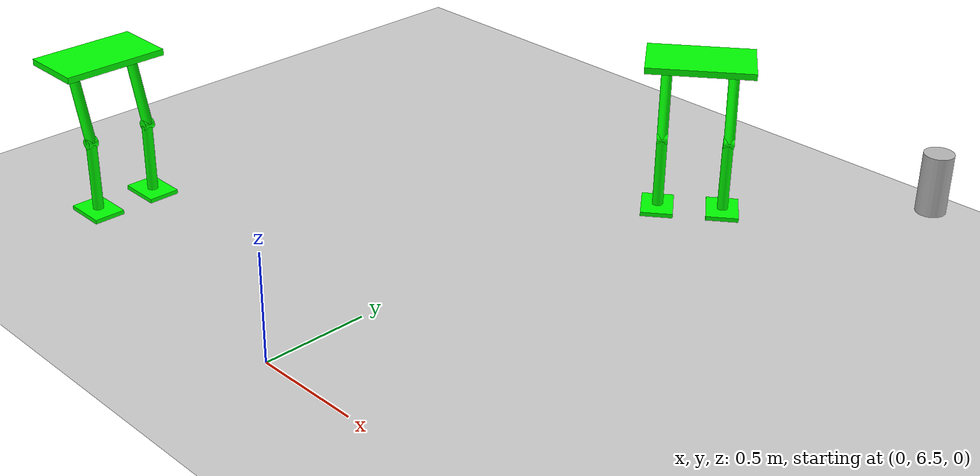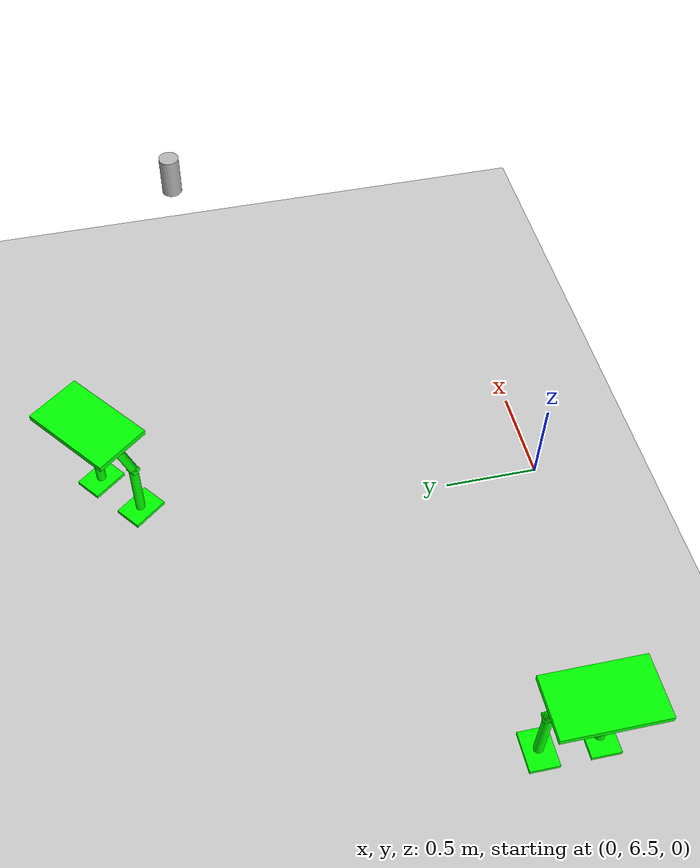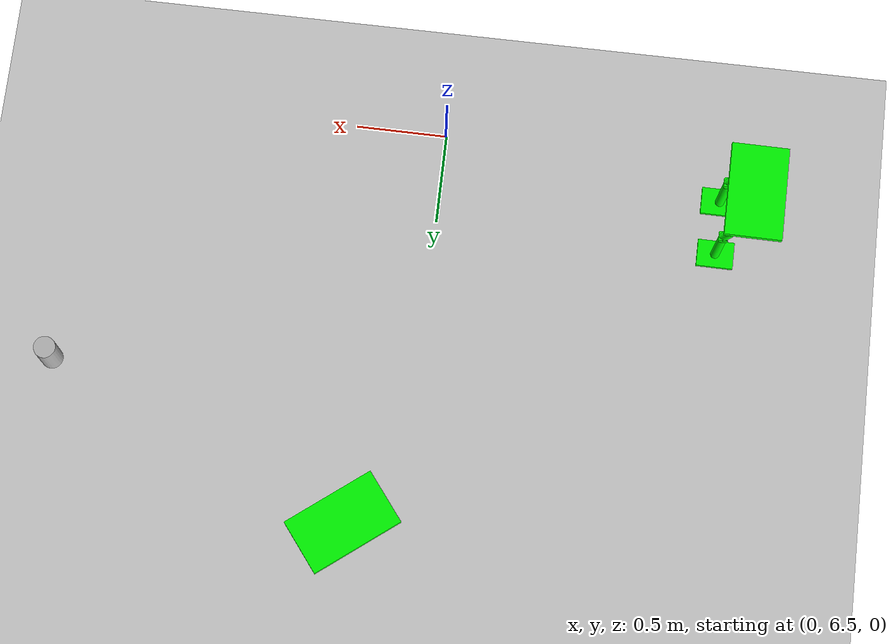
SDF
<sdf version="1.7">
 <world name="default">
  <model name="ground_plane">
   <static>1</static>
   <link name="link">
    <collision name="collision">
     <geometry><plane><normal>0 0 1</normal><size>100 100</size></plane></geometry>
     <surface>
      <contact><collide_bitmask>65535</collide_bitmask></contact>
      <friction><ode><mu>100</mu><mu2>50</mu2></ode></friction>
     </surface>
    </collision>
    <visual name="visual">
     <cast_shadows>0</cast_shadows>
     <geometry><plane><normal>0 0 1</normal><size>100 100</size></plane></geometry>
     <material>
      <script><uri>file://media/materials/scripts/gazebo.material</uri><name>Gazebo/Grey</name></script>
     </material>
    </visual>
   </link>
  </model>
  <model name="beer">
   <link name="link">
    <pose>0 0 0.115 0 -0 0</pose>
    <inertial>
     <mass>0.39</mass>
     <inertia><ixx>0.00058</ixx><ixy>0</ixy><ixz>0</ixz><iyy>0.00058</iyy><iyz>0</iyz><izz>0.00019</izz></inertia>
    </inertial>
    <collision name="collision">
     <geometry><cylinder><radius>0.055</radius><length>0.23</length></cylinder></geometry>
    </collision>
    <visual name="visual">
     <geometry><cylinder><radius>0.055</radius><length>0.23</length></cylinder></geometry>
     <material>
      <script>
       <uri>model://beer/materials/scripts</uri>
       <uri>model://beer/materials/textures</uri>
       <name>Beer/Diffuse</name>
      </script>
     </material>
    </visual>
   </link>
   <pose>1.81621 8.16915 0.774992 2.7e-05 1.2e-05 0.001071</pose>
  </model>
  <model name="HumanoidRobot">
   <link name="link">
    <pose>0.00063 -0.001818 -0.49 0 -0 0</pose>
    <inertial>
     <mass>1</mass>
     <inertia>
      <ixx>0.166667</ixx>
      <ixy>0</ixy>
      <ixz>0</ixz>
      <iyy>0.166667</iyy>
      <iyz>0</iyz>
      <izz>0.166667</izz>
     </inertia>
    </inertial>
    <visual name="visual">
     <geometry><box><size>0.2 0.15 0.02</size></box></geometry>
     <material>
      <script><name>Gazebo/Grey</name><uri>file://media/materials/scripts/gazebo.material</uri></script>
      <shader type="pixel"><normal_map>__default__</normal_map></shader>
      <ambient>0 1 0 0</ambient>
      <diffuse>0.7 0.7 0.7 1</diffuse>
      <specular>0.01 0.01 0.01 1</specular>
      <emissive>0 0 0 1</emissive>
     </material>
    </visual>
    <collision name="collision">
     <geometry><box><size>0.2 0.15 0.02</size></box></geometry>
     <surface>
      <friction>
       <ode><mu>1</mu><mu2>1</mu2><fdir1>0 0 0</fdir1><slip1>0</slip1><slip2>0</slip2></ode>
       <torsional>
        <coefficient>1</coefficient>
        <patch_radius>0</patch_radius>
        <surface_radius>0</surface_radius>
        <use_patch_radius>1</use_patch_radius>
        <ode><slip>0</slip></ode>
       </torsional>
      </friction>
      <bounce><restitution_coefficient>0</restitution_coefficient><threshold>1e+06</threshold></bounce>
      <contact>
       <collide_without_contact>0</collide_without_contact>
       <collide_without_contact_bitmask>1</collide_without_contact_bitmask>
       <collide_bitmask>1</collide_bitmask>
       <ode>
        <soft_cfm>0</soft_cfm>
        <soft_erp>0.2</soft_erp>
        <kp>1e+13</kp>
        <kd>1</kd>
        <max_vel>0.01</max_vel>
        <min_depth>0</min_depth>
       </ode>
       <bullet>
        <split_impulse>1</split_impulse>
        <split_impulse_penetration_threshold>-0.01</split_impulse_penetration_threshold>
        <soft_cfm>0</soft_cfm>
        <soft_erp>0.2</soft_erp>
        <kp>1e+13</kp>
        <kd>1</kd>
       </bullet>
      </contact>
     </surface>
    </collision>
   </link>
   <link name="link_0">
    <pose>0 0 -0.325 0 -0 0</pose>
    <inertial>
     <mass>1</mass>
     <inertia><ixx>0.145833</ixx><ixy>0</ixy><ixz>0</ixz><iyy>0.145833</iyy><iyz>0</iyz><izz>0.125</izz></inertia>
    </inertial>
    <visual name="visual">
     <geometry><cylinder><radius>0.025</radius><length>0.35</length></cylinder></geometry>
     <material>
      <lighting>1</lighting>
      <script><uri>file://media/materials/scripts/gazebo.material</uri><name>Gazebo/Grey</name></script>
      <shader type="pixel"><normal_map>__default__</normal_map></shader>
      <ambient>0 1 0 0</ambient>
      <diffuse>0.7 0.7 0.7 1</diffuse>
      <specular>0.01 0.01 0.01 1</specular>
      <emissive>0 0 0 1</emissive>
     </material>
    </visual>
    <collision name="collision">
     <geometry><cylinder><radius>0.025</radius><length>0.35</length></cylinder></geometry>
     <surface>
      <friction>
       <ode><mu>1</mu><mu2>1</mu2><fdir1>0 0 0</fdir1><slip1>0</slip1><slip2>0</slip2></ode>
       <torsional>
        <coefficient>1</coefficient>
        <patch_radius>0</patch_radius>
        <surface_radius>0</surface_radius>
        <use_patch_radius>1</use_patch_radius>
        <ode><slip>0</slip></ode>
       </torsional>
      </friction>
      <bounce><restitution_coefficient>0</restitution_coefficient><threshold>1e+06</threshold></bounce>
      <contact>
       <collide_without_contact>0</collide_without_contact>
       <collide_without_contact_bitmask>1</collide_without_contact_bitmask>
       <collide_bitmask>1</collide_bitmask>
       <ode>
        <soft_cfm>0</soft_cfm>
        <soft_erp>0.2</soft_erp>
        <kp>1e+13</kp>
        <kd>1</kd>
        <max_vel>0.01</max_vel>
        <min_depth>0</min_depth>
       </ode>
       <bullet>
        <split_impulse>1</split_impulse>
        <split_impulse_penetration_threshold>-0.01</split_impulse_penetration_threshold>
        <soft_cfm>0</soft_cfm>
        <soft_erp>0.2</soft_erp>
        <kp>1e+13</kp>
        <kd>1</kd>
       </bullet>
      </contact>
     </surface>
    </collision>
   </link>
   <link name="link_0_clone">
    <pose>-0.051999 -0.00033 0.020433 0 -0.308136 0</pose>
    <inertial>
     <mass>1</mass>
     <inertia><ixx>0.145833</ixx><ixy>0</ixy><ixz>0</ixz><iyy>0.145833</iyy><iyz>0</iyz><izz>0.125</izz></inertia>
    </inertial>
    <visual name="visual">
     <geometry><cylinder><radius>0.025</radius><length>0.35</length></cylinder></geometry>
     <material>
      <lighting>1</lighting>
      <script><uri>file://media/materials/scripts/gazebo.material</uri><name>Gazebo/Grey</name></script>
      <shader type="pixel"><normal_map>__default__</normal_map></shader>
      <ambient>0 1 0 0</ambient>
      <diffuse>0.7 0.7 0.7 1</diffuse>
      <specular>0.01 0.01 0.01 1</specular>
      <emissive>0 0 0 1</emissive>
     </material>
    </visual>
    <collision name="collision">
     <geometry><cylinder><radius>0.025</radius><length>0.35</length></cylinder></geometry>
     <surface>
      <friction>
       <ode><mu>1</mu><mu2>1</mu2><fdir1>0 0 0</fdir1><slip1>0</slip1><slip2>0</slip2></ode>
       <torsional>
        <coefficient>1</coefficient>
        <patch_radius>0</patch_radius>
        <surface_radius>0</surface_radius>
        <use_patch_radius>1</use_patch_radius>
        <ode><slip>0</slip></ode>
       </torsional>
      </friction>
      <bounce><restitution_coefficient>0</restitution_coefficient><threshold>1e+06</threshold></bounce>
      <contact>
       <collide_without_contact>0</collide_without_contact>
       <collide_without_contact_bitmask>1</collide_without_contact_bitmask>
       <collide_bitmask>1</collide_bitmask>
       <ode>
        <soft_cfm>0</soft_cfm>
        <soft_erp>0.2</soft_erp>
        <kp>1e+13</kp>
        <kd>1</kd>
        <max_vel>0.01</max_vel>
        <min_depth>0</min_depth>
       </ode>
       <bullet>
        <split_impulse>1</split_impulse>
        <split_impulse_penetration_threshold>-0.01</split_impulse_penetration_threshold>
        <soft_cfm>0</soft_cfm>
        <soft_erp>0.2</soft_erp>
        <kp>1e+13</kp>
        <kd>1</kd>
       </bullet>
      </contact>
     </surface>
    </collision>
   </link>
   <link name="link_0_clone_0">
    <pose>-0 0.3 -0.325 0 -0 0</pose>
    <inertial>
     <mass>1</mass>
     <inertia><ixx>0.145833</ixx><ixy>0</ixy><ixz>0</ixz><iyy>0.145833</iyy><iyz>0</iyz><izz>0.125</izz></inertia>
    </inertial>
    <visual name="visual">
     <geometry><cylinder><radius>0.025</radius><length>0.35</length></cylinder></geometry>
     <material>
      <lighting>1</lighting>
      <script><uri>file://media/materials/scripts/gazebo.material</uri><name>Gazebo/Grey</name></script>
      <shader type="pixel"><normal_map>__default__</normal_map></shader>
      <ambient>0 1 0 0</ambient>
      <diffuse>0.7 0.7 0.7 1</diffuse>
      <specular>0.01 0.01 0.01 1</specular>
      <emissive>0 0 0 1</emissive>
     </material>
    </visual>
    <collision name="collision">
     <geometry><cylinder><radius>0.025</radius><length>0.35</length></cylinder></geometry>
     <surface>
      <friction>
       <ode><mu>1</mu><mu2>1</mu2><fdir1>0 0 0</fdir1><slip1>0</slip1><slip2>0</slip2></ode>
       <torsional>
        <coefficient>1</coefficient>
        <patch_radius>0</patch_radius>
        <surface_radius>0</surface_radius>
        <use_patch_radius>1</use_patch_radius>
        <ode><slip>0</slip></ode>
       </torsional>
      </friction>
      <bounce><restitution_coefficient>0</restitution_coefficient><threshold>1e+06</threshold></bounce>
      <contact>
       <collide_without_contact>0</collide_without_contact>
       <collide_without_contact_bitmask>1</collide_without_contact_bitmask>
       <collide_bitmask>1</collide_bitmask>
       <ode>
        <soft_cfm>0</soft_cfm>
        <soft_erp>0.2</soft_erp>
        <kp>1e+13</kp>
        <kd>1</kd>
        <max_vel>0.01</max_vel>
        <min_depth>0</min_depth>
       </ode>
       <bullet>
        <split_impulse>1</split_impulse>
        <split_impulse_penetration_threshold>-0.01</split_impulse_penetration_threshold>
        <soft_cfm>0</soft_cfm>
        <soft_erp>0.2</soft_erp>
        <kp>1e+13</kp>
        <kd>1</kd>
       </bullet>
      </contact>
     </surface>
    </collision>
   </link>
   <link name="link_0_clone_clone">
    <pose>-0.050474 0.303246 0.020079 0 -0.308136 0</pose>
    <inertial>
     <mass>1</mass>
     <inertia><ixx>0.145833</ixx><ixy>0</ixy><ixz>0</ixz><iyy>0.145833</iyy><iyz>0</iyz><izz>0.125</izz></inertia>
    </inertial>
    <visual name="visual">
     <geometry><cylinder><radius>0.025</radius><length>0.35</length></cylinder></geometry>
     <material>
      <lighting>1</lighting>
      <script><uri>file://media/materials/scripts/gazebo.material</uri><name>Gazebo/Grey</name></script>
      <shader type="pixel"><normal_map>__default__</normal_map></shader>
      <ambient>0 1 0 0</ambient>
      <diffuse>0.7 0.7 0.7 1</diffuse>
      <specular>0.01 0.01 0.01 1</specular>
      <emissive>0 0 0 1</emissive>
     </material>
    </visual>
    <collision name="collision">
     <geometry><cylinder><radius>0.025</radius><length>0.35</length></cylinder></geometry>
     <surface>
      <friction>
       <ode><mu>1</mu><mu2>1</mu2><fdir1>0 0 0</fdir1><slip1>0</slip1><slip2>0</slip2></ode>
       <torsional>
        <coefficient>1</coefficient>
        <patch_radius>0</patch_radius>
        <surface_radius>0</surface_radius>
        <use_patch_radius>1</use_patch_radius>
        <ode><slip>0</slip></ode>
       </torsional>
      </friction>
      <bounce><restitution_coefficient>0</restitution_coefficient><threshold>1e+06</threshold></bounce>
      <contact>
       <collide_without_contact>0</collide_without_contact>
       <collide_without_contact_bitmask>1</collide_without_contact_bitmask>
       <collide_bitmask>1</collide_bitmask>
       <ode>
        <soft_cfm>0</soft_cfm>
        <soft_erp>0.2</soft_erp>
        <kp>1e+13</kp>
        <kd>1</kd>
        <max_vel>0.01</max_vel>
        <min_depth>0</min_depth>
       </ode>
       <bullet>
        <split_impulse>1</split_impulse>
        <split_impulse_penetration_threshold>-0.01</split_impulse_penetration_threshold>
        <soft_cfm>0</soft_cfm>
        <soft_erp>0.2</soft_erp>
        <kp>1e+13</kp>
        <kd>1</kd>
       </bullet>
      </contact>
     </surface>
    </collision>
   </link>
   <link name="link_1">
    <pose>0 0 -0.145 1.5707 -0 0</pose>
    <inertial>
     <mass>1</mass>
     <inertia><ixx>0.145833</ixx><ixy>0</ixy><ixz>0</ixz><iyy>0.145833</iyy><iyz>0</iyz><izz>0.125</izz></inertia>
    </inertial>
    <visual name="visual">
     <geometry><cylinder><radius>0.025</radius><length>0.05</length></cylinder></geometry>
     <material>
      <lighting>1</lighting>
      <script><uri>file://media/materials/scripts/gazebo.material</uri><name>Gazebo/Grey</name></script>
      <shader type="pixel"><normal_map>__default__</normal_map></shader>
      <ambient>0 1 0 0</ambient>
      <diffuse>0.7 0.7 0.7 1</diffuse>
      <specular>0.01 0.01 0.01 1</specular>
      <emissive>0 0 0 1</emissive>
     </material>
    </visual>
    <collision name="collision">
     <geometry><cylinder><radius>0.025</radius><length>0.05</length></cylinder></geometry>
     <surface>
      <friction>
       <ode><mu>1</mu><mu2>1</mu2><fdir1>0 0 0</fdir1><slip1>0</slip1><slip2>0</slip2></ode>
       <torsional>
        <coefficient>1</coefficient>
        <patch_radius>0</patch_radius>
        <surface_radius>0</surface_radius>
        <use_patch_radius>1</use_patch_radius>
        <ode><slip>0</slip></ode>
       </torsional>
      </friction>
      <bounce><restitution_coefficient>0</restitution_coefficient><threshold>1e+06</threshold></bounce>
      <contact>
       <collide_without_contact>0</collide_without_contact>
       <collide_without_contact_bitmask>1</collide_without_contact_bitmask>
       <collide_bitmask>1</collide_bitmask>
       <ode>
        <soft_cfm>0</soft_cfm>
        <soft_erp>0.2</soft_erp>
        <kp>1e+13</kp>
        <kd>1</kd>
        <max_vel>0.01</max_vel>
        <min_depth>0</min_depth>
       </ode>
       <bullet>
        <split_impulse>1</split_impulse>
        <split_impulse_penetration_threshold>-0.01</split_impulse_penetration_threshold>
        <soft_cfm>0</soft_cfm>
        <soft_erp>0.2</soft_erp>
        <kp>1e+13</kp>
        <kd>1</kd>
       </bullet>
      </contact>
     </surface>
    </collision>
   </link>
   <link name="link_1_clone">
    <pose>-0.103509 -0.003298 0.181065 1.5707 -0 0</pose>
    <inertial>
     <mass>1</mass>
     <inertia><ixx>0.145833</ixx><ixy>0</ixy><ixz>0</ixz><iyy>0.145833</iyy><iyz>0</iyz><izz>0.125</izz></inertia>
    </inertial>
    <visual name="visual">
     <geometry><cylinder><radius>0.025</radius><length>0.05</length></cylinder></geometry>
     <material>
      <lighting>1</lighting>
      <script><uri>file://media/materials/scripts/gazebo.material</uri><name>Gazebo/Grey</name></script>
      <shader type="pixel"><normal_map>__default__</normal_map></shader>
      <ambient>0 1 0 0</ambient>
      <diffuse>0.7 0.7 0.7 1</diffuse>
      <specular>0.01 0.01 0.01 1</specular>
      <emissive>0 0 0 1</emissive>
     </material>
    </visual>
    <collision name="collision">
     <geometry><cylinder><radius>0.025</radius><length>0.05</length></cylinder></geometry>
     <surface>
      <friction>
       <ode><mu>1</mu><mu2>1</mu2><fdir1>0 0 0</fdir1><slip1>0</slip1><slip2>0</slip2></ode>
       <torsional>
        <coefficient>1</coefficient>
        <patch_radius>0</patch_radius>
        <surface_radius>0</surface_radius>
        <use_patch_radius>1</use_patch_radius>
        <ode><slip>0</slip></ode>
       </torsional>
      </friction>
      <bounce><restitution_coefficient>0</restitution_coefficient><threshold>1e+06</threshold></bounce>
      <contact>
       <collide_without_contact>0</collide_without_contact>
       <collide_without_contact_bitmask>1</collide_without_contact_bitmask>
       <collide_bitmask>1</collide_bitmask>
       <ode>
        <soft_cfm>0</soft_cfm>
        <soft_erp>0.2</soft_erp>
        <kp>1e+13</kp>
        <kd>1</kd>
        <max_vel>0.01</max_vel>
        <min_depth>0</min_depth>
       </ode>
       <bullet>
        <split_impulse>1</split_impulse>
        <split_impulse_penetration_threshold>-0.01</split_impulse_penetration_threshold>
        <soft_cfm>0</soft_cfm>
        <soft_erp>0.2</soft_erp>
        <kp>1e+13</kp>
        <kd>1</kd>
       </bullet>
      </contact>
     </surface>
    </collision>
   </link>
   <link name="link_1_clone_0">
    <pose>0.000939 0.302493 -0.145 1.5707 -0 0</pose>
    <inertial>
     <mass>1</mass>
     <inertia><ixx>0.145833</ixx><ixy>0</ixy><ixz>0</ixz><iyy>0.145833</iyy><iyz>0</iyz><izz>0.125</izz></inertia>
    </inertial>
    <visual name="visual">
     <geometry><cylinder><radius>0.025</radius><length>0.05</length></cylinder></geometry>
     <material>
      <lighting>1</lighting>
      <script><uri>file://media/materials/scripts/gazebo.material</uri><name>Gazebo/Grey</name></script>
      <shader type="pixel"><normal_map>__default__</normal_map></shader>
      <ambient>0 1 0 0</ambient>
      <diffuse>0.7 0.7 0.7 1</diffuse>
      <specular>0.01 0.01 0.01 1</specular>
      <emissive>0 0 0 1</emissive>
     </material>
    </visual>
    <collision name="collision">
     <geometry><cylinder><radius>0.025</radius><length>0.05</length></cylinder></geometry>
     <surface>
      <friction>
       <ode><mu>1</mu><mu2>1</mu2><fdir1>0 0 0</fdir1><slip1>0</slip1><slip2>0</slip2></ode>
       <torsional>
        <coefficient>1</coefficient>
        <patch_radius>0</patch_radius>
        <surface_radius>0</surface_radius>
        <use_patch_radius>1</use_patch_radius>
        <ode><slip>0</slip></ode>
       </torsional>
      </friction>
      <bounce><restitution_coefficient>0</restitution_coefficient><threshold>1e+06</threshold></bounce>
      <contact>
       <collide_without_contact>0</collide_without_contact>
       <collide_without_contact_bitmask>1</collide_without_contact_bitmask>
       <collide_bitmask>1</collide_bitmask>
       <ode>
        <soft_cfm>0</soft_cfm>
        <soft_erp>0.2</soft_erp>
        <kp>1e+13</kp>
        <kd>1</kd>
        <max_vel>0.01</max_vel>
        <min_depth>0</min_depth>
       </ode>
       <bullet>
        <split_impulse>1</split_impulse>
        <split_impulse_penetration_threshold>-0.01</split_impulse_penetration_threshold>
        <soft_cfm>0</soft_cfm>
        <soft_erp>0.2</soft_erp>
        <kp>1e+13</kp>
        <kd>1</kd>
       </bullet>
      </contact>
     </surface>
    </collision>
   </link>
   <link name="link_1_clone_clone">
    <pose>-0.100587 0.302363 0.181067 1.5707 -0 0</pose>
    <inertial>
     <mass>1</mass>
     <inertia><ixx>0.145833</ixx><ixy>0</ixy><ixz>0</ixz><iyy>0.145833</iyy><iyz>0</iyz><izz>0.125</izz></inertia>
    </inertial>
    <visual name="visual">
     <geometry><cylinder><radius>0.025</radius><length>0.05</length></cylinder></geometry>
     <material>
      <lighting>1</lighting>
      <script><uri>file://media/materials/scripts/gazebo.material</uri><name>Gazebo/Grey</name></script>
      <shader type="pixel"><normal_map>__default__</normal_map></shader>
      <ambient>0 1 0 0</ambient>
      <diffuse>0.7 0.7 0.7 1</diffuse>
      <specular>0.01 0.01 0.01 1</specular>
      <emissive>0 0 0 1</emissive>
     </material>
    </visual>
    <collision name="collision">
     <geometry><cylinder><radius>0.025</radius><length>0.05</length></cylinder></geometry>
     <surface>
      <friction>
       <ode><mu>1</mu><mu2>1</mu2><fdir1>0 0 0</fdir1><slip1>0</slip1><slip2>0</slip2></ode>
       <torsional>
        <coefficient>1</coefficient>
        <patch_radius>0</patch_radius>
        <surface_radius>0</surface_radius>
        <use_patch_radius>1</use_patch_radius>
        <ode><slip>0</slip></ode>
       </torsional>
      </friction>
      <bounce><restitution_coefficient>0</restitution_coefficient><threshold>1e+06</threshold></bounce>
      <contact>
       <collide_without_contact>0</collide_without_contact>
       <collide_without_contact_bitmask>1</collide_without_contact_bitmask>
       <collide_bitmask>1</collide_bitmask>
       <ode>
        <soft_cfm>0</soft_cfm>
        <soft_erp>0.2</soft_erp>
        <kp>1e+13</kp>
        <kd>1</kd>
        <max_vel>0.01</max_vel>
        <min_depth>0</min_depth>
       </ode>
       <bullet>
        <split_impulse>1</split_impulse>
        <split_impulse_penetration_threshold>-0.01</split_impulse_penetration_threshold>
        <soft_cfm>0</soft_cfm>
        <soft_erp>0.2</soft_erp>
        <kp>1e+13</kp>
        <kd>1</kd>
       </bullet>
      </contact>
     </surface>
    </collision>
   </link>
   <link name="link_2">
    <pose>-0.108781 0.148598 0.2021 0 -0 0</pose>
    <inertial>
     <mass>1</mass>
     <inertia>
      <ixx>0.166667</ixx>
      <ixy>0</ixy>
      <ixz>0</ixz>
      <iyy>0.166667</iyy>
      <iyz>0</iyz>
      <izz>0.166667</izz>
     </inertia>
    </inertial>
    <visual name="visual">
     <geometry><box><size>0.3 0.5 0.03</size></box></geometry>
     <material>
      <lighting>1</lighting>
      <script><uri>file://media/materials/scripts/gazebo.material</uri><name>Gazebo/Grey</name></script>
      <shader type="pixel"><normal_map>__default__</normal_map></shader>
      <ambient>0 1 0 0</ambient>
      <diffuse>0.7 0.7 0.7 1</diffuse>
      <specular>0.01 0.01 0.01 1</specular>
      <emissive>0 0 0 1</emissive>
     </material>
    </visual>
    <collision name="collision">
     <geometry><box><size>0.3 0.5 0.03</size></box></geometry>
     <surface>
      <friction>
       <ode><mu>1</mu><mu2>1</mu2><fdir1>0 0 0</fdir1><slip1>0</slip1><slip2>0</slip2></ode>
       <torsional>
        <coefficient>1</coefficient>
        <patch_radius>0</patch_radius>
        <surface_radius>0</surface_radius>
        <use_patch_radius>1</use_patch_radius>
        <ode><slip>0</slip></ode>
       </torsional>
      </friction>
      <bounce><restitution_coefficient>0</restitution_coefficient><threshold>1e+06</threshold></bounce>
      <contact>
       <collide_without_contact>0</collide_without_contact>
       <collide_without_contact_bitmask>1</collide_without_contact_bitmask>
       <collide_bitmask>1</collide_bitmask>
       <ode>
        <soft_cfm>0</soft_cfm>
        <soft_erp>0.2</soft_erp>
        <kp>1e+13</kp>
        <kd>1</kd>
        <max_vel>0.01</max_vel>
        <min_depth>0</min_depth>
       </ode>
       <bullet>
        <split_impulse>1</split_impulse>
        <split_impulse_penetration_threshold>-0.01</split_impulse_penetration_threshold>
        <soft_cfm>0</soft_cfm>
        <soft_erp>0.2</soft_erp>
        <kp>1e+13</kp>
        <kd>1</kd>
       </bullet>
      </contact>
     </surface>
    </collision>
   </link>
   <link name="link_clone">
    <pose>-0.003432 0.299188 -0.49 0 -0 0</pose>
    <inertial>
     <mass>1</mass>
     <inertia>
      <ixx>0.166667</ixx>
      <ixy>0</ixy>
      <ixz>0</ixz>
      <iyy>0.166667</iyy>
      <iyz>0</iyz>
      <izz>0.166667</izz>
     </inertia>
    </inertial>
    <visual name="visual">
     <geometry><box><size>0.2 0.15 0.02</size></box></geometry>
     <material>
      <script><name>Gazebo/Grey</name><uri>file://media/materials/scripts/gazebo.material</uri></script>
      <shader type="pixel"><normal_map>__default__</normal_map></shader>
      <ambient>0 1 0 0</ambient>
      <diffuse>0.7 0.7 0.7 1</diffuse>
      <specular>0.01 0.01 0.01 1</specular>
      <emissive>0 0 0 1</emissive>
     </material>
    </visual>
    <collision name="collision">
     <geometry><box><size>0.2 0.15 0.02</size></box></geometry>
     <surface>
      <friction>
       <ode><mu>1</mu><mu2>1</mu2><fdir1>0 0 0</fdir1><slip1>0</slip1><slip2>0</slip2></ode>
       <torsional>
        <coefficient>1</coefficient>
        <patch_radius>0</patch_radius>
        <surface_radius>0</surface_radius>
        <use_patch_radius>1</use_patch_radius>
        <ode><slip>0</slip></ode>
       </torsional>
      </friction>
      <bounce><restitution_coefficient>0</restitution_coefficient><threshold>1e+06</threshold></bounce>
      <contact>
       <collide_without_contact>0</collide_without_contact>
       <collide_without_contact_bitmask>1</collide_without_contact_bitmask>
       <collide_bitmask>1</collide_bitmask>
       <ode>
        <soft_cfm>0</soft_cfm>
        <soft_erp>0.2</soft_erp>
        <kp>1e+13</kp>
        <kd>1</kd>
        <max_vel>0.01</max_vel>
        <min_depth>0</min_depth>
       </ode>
       <bullet>
        <split_impulse>1</split_impulse>
        <split_impulse_penetration_threshold>-0.01</split_impulse_penetration_threshold>
        <soft_cfm>0</soft_cfm>
        <soft_erp>0.2</soft_erp>
        <kp>1e+13</kp>
        <kd>1</kd>
       </bullet>
      </contact>
     </surface>
    </collision>
   </link>
   <joint name="link_0_JOINT_2" type="fixed">
    <parent>link_0</parent>
    <child>link</child>
    <physics>
     <ode><limit><cfm>0</cfm><erp>0.2</erp></limit><suspension><cfm>0</cfm><erp>0.2</erp></suspension></ode>
    </physics>
   </joint>
   <joint name="link_0_JOINT_3" type="fixed">
    <parent>link_0</parent>
    <child>link_1</child>
    <physics>
     <ode><limit><cfm>0</cfm><erp>0.2</erp></limit><suspension><cfm>0</cfm><erp>0.2</erp></suspension></ode>
    </physics>
   </joint>
   <joint name="link_0_clone_0_JOINT_1" type="fixed">
    <parent>link_0_clone_0</parent>
    <child>link_1_clone_0</child>
    <physics>
     <ode><limit><cfm>0</cfm><erp>0.2</erp></limit><suspension><cfm>0</cfm><erp>0.2</erp></suspension></ode>
    </physics>
   </joint>
   <joint name="link_0_clone_0_JOINT_6" type="fixed">
    <parent>link_0_clone_0</parent>
    <child>link_clone</child>
    <physics>
     <ode><limit><cfm>0</cfm><erp>0.2</erp></limit><suspension><cfm>0</cfm><erp>0.2</erp></suspension></ode>
    </physics>
   </joint>
   <joint name="link_0_clone_JOINT_4" type="fixed">
    <parent>link_0_clone</parent>
    <child>link_1</child>
    <physics>
     <ode><limit><cfm>0</cfm><erp>0.2</erp></limit><suspension><cfm>0</cfm><erp>0.2</erp></suspension></ode>
    </physics>
   </joint>
   <joint name="link_0_clone_JOINT_5" type="fixed">
    <parent>link_0_clone</parent>
    <child>link_1_clone</child>
    <physics>
     <ode><limit><cfm>0</cfm><erp>0.2</erp></limit><suspension><cfm>0</cfm><erp>0.2</erp></suspension></ode>
    </physics>
   </joint>
   <joint name="link_0_clone_clone_JOINT_0" type="fixed">
    <parent>link_0_clone_clone</parent>
    <child>link_1_clone_0</child>
    <physics>
     <ode><limit><cfm>0</cfm><erp>0.2</erp></limit><suspension><cfm>0</cfm><erp>0.2</erp></suspension></ode>
    </physics>
   </joint>
   <joint name="link_2_JOINT_7" type="fixed">
    <parent>link_2</parent>
    <child>link_1_clone_clone</child>
    <physics>
     <ode><limit><cfm>0</cfm><erp>0.2</erp></limit><suspension><cfm>0</cfm><erp>0.2</erp></suspension></ode>
    </physics>
   </joint>
   <joint name="link_2_JOINT_8" type="fixed">
    <parent>link_2</parent>
    <child>link_1_clone</child>
    <physics>
     <ode><limit><cfm>0</cfm><erp>0.2</erp></limit><suspension><cfm>0</cfm><erp>0.2</erp></suspension></ode>
    </physics>
   </joint>
   <static>0</static>
   <pose>-1.54544 6.71097 0.500004 -5e-05 -5e-06 -0.00831</pose>
  </model>
  <model name="HumanoidRobot_clone">
   <link name="link">
    <pose>0.00063 -0.001818 -0.49 0 -0 0</pose>
    <inertial>
     <mass>1</mass>
     <inertia>
      <ixx>0.166667</ixx>
      <ixy>0</ixy>
      <ixz>0</ixz>
      <iyy>0.166667</iyy>
      <iyz>0</iyz>
      <izz>0.166667</izz>
     </inertia>
    </inertial>
    <visual name="visual">
     <geometry><box><size>0.2 0.15 0.02</size></box></geometry>
     <material>
      <script><name>Gazebo/Grey</name><uri>file://media/materials/scripts/gazebo.material</uri></script>
      <shader type="pixel"><normal_map>__default__</normal_map></shader>
      <ambient>0 1 0 0</ambient>
      <diffuse>0.7 0.7 0.7 1</diffuse>
      <specular>0.01 0.01 0.01 1</specular>
      <emissive>0 0 0 1</emissive>
     </material>
    </visual>
    <collision name="collision">
     <geometry><box><size>0.2 0.15 0.02</size></box></geometry>
     <surface>
      <friction>
       <ode><mu>1</mu><mu2>1</mu2><fdir1>0 0 0</fdir1><slip1>0</slip1><slip2>0</slip2></ode>
       <torsional>
        <coefficient>1</coefficient>
        <patch_radius>0</patch_radius>
        <surface_radius>0</surface_radius>
        <use_patch_radius>1</use_patch_radius>
        <ode><slip>0</slip></ode>
       </torsional>
      </friction>
      <bounce><restitution_coefficient>0</restitution_coefficient><threshold>1e+06</threshold></bounce>
      <contact>
       <collide_without_contact>0</collide_without_contact>
       <collide_without_contact_bitmask>1</collide_without_contact_bitmask>
       <collide_bitmask>1</collide_bitmask>
       <ode>
        <soft_cfm>0</soft_cfm>
        <soft_erp>0.2</soft_erp>
        <kp>1e+13</kp>
        <kd>1</kd>
        <max_vel>0.01</max_vel>
        <min_depth>0</min_depth>
       </ode>
       <bullet>
        <split_impulse>1</split_impulse>
        <split_impulse_penetration_threshold>-0.01</split_impulse_penetration_threshold>
        <soft_cfm>0</soft_cfm>
        <soft_erp>0.2</soft_erp>
        <kp>1e+13</kp>
        <kd>1</kd>
       </bullet>
      </contact>
     </surface>
    </collision>
   </link>
   <link name="link_0">
    <pose>0 0 -0.325 0 -0 0</pose>
    <inertial>
     <mass>1</mass>
     <inertia><ixx>0.145833</ixx><ixy>0</ixy><ixz>0</ixz><iyy>0.145833</iyy><iyz>0</iyz><izz>0.125</izz></inertia>
    </inertial>
    <visual name="visual">
     <geometry><cylinder><radius>0.025</radius><length>0.35</length></cylinder></geometry>
     <material>
      <lighting>1</lighting>
      <script><uri>file://media/materials/scripts/gazebo.material</uri><name>Gazebo/Grey</name></script>
      <shader type="pixel"><normal_map>__default__</normal_map></shader>
      <ambient>0 1 0 0</ambient>
      <diffuse>0.7 0.7 0.7 1</diffuse>
      <specular>0.01 0.01 0.01 1</specular>
      <emissive>0 0 0 1</emissive>
     </material>
    </visual>
    <collision name="collision">
     <geometry><cylinder><radius>0.025</radius><length>0.35</length></cylinder></geometry>
     <surface>
      <friction>
       <ode><mu>1</mu><mu2>1</mu2><fdir1>0 0 0</fdir1><slip1>0</slip1><slip2>0</slip2></ode>
       <torsional>
        <coefficient>1</coefficient>
        <patch_radius>0</patch_radius>
        <surface_radius>0</surface_radius>
        <use_patch_radius>1</use_patch_radius>
        <ode><slip>0</slip></ode>
       </torsional>
      </friction>
      <bounce><restitution_coefficient>0</restitution_coefficient><threshold>1e+06</threshold></bounce>
      <contact>
       <collide_without_contact>0</collide_without_contact>
       <collide_without_contact_bitmask>1</collide_without_contact_bitmask>
       <collide_bitmask>1</collide_bitmask>
       <ode>
        <soft_cfm>0</soft_cfm>
        <soft_erp>0.2</soft_erp>
        <kp>1e+13</kp>
        <kd>1</kd>
        <max_vel>0.01</max_vel>
        <min_depth>0</min_depth>
       </ode>
       <bullet>
        <split_impulse>1</split_impulse>
        <split_impulse_penetration_threshold>-0.01</split_impulse_penetration_threshold>
        <soft_cfm>0</soft_cfm>
        <soft_erp>0.2</soft_erp>
        <kp>1e+13</kp>
        <kd>1</kd>
       </bullet>
      </contact>
     </surface>
    </collision>
   </link>
   <link name="link_0_clone">
    <pose>-0.051999 -0.00033 0.020433 0 -0.308136 0</pose>
    <inertial>
     <mass>1</mass>
     <inertia><ixx>0.145833</ixx><ixy>0</ixy><ixz>0</ixz><iyy>0.145833</iyy><iyz>0</iyz><izz>0.125</izz></inertia>
    </inertial>
    <visual name="visual">
     <geometry><cylinder><radius>0.025</radius><length>0.35</length></cylinder></geometry>
     <material>
      <lighting>1</lighting>
      <script><uri>file://media/materials/scripts/gazebo.material</uri><name>Gazebo/Grey</name></script>
      <shader type="pixel"><normal_map>__default__</normal_map></shader>
      <ambient>0 1 0 0</ambient>
      <diffuse>0.7 0.7 0.7 1</diffuse>
      <specular>0.01 0.01 0.01 1</specular>
      <emissive>0 0 0 1</emissive>
     </material>
    </visual>
    <collision name="collision">
     <geometry><cylinder><radius>0.025</radius><length>0.35</length></cylinder></geometry>
     <surface>
      <friction>
       <ode><mu>1</mu><mu2>1</mu2><fdir1>0 0 0</fdir1><slip1>0</slip1><slip2>0</slip2></ode>
       <torsional>
        <coefficient>1</coefficient>
        <patch_radius>0</patch_radius>
        <surface_radius>0</surface_radius>
        <use_patch_radius>1</use_patch_radius>
        <ode><slip>0</slip></ode>
       </torsional>
      </friction>
      <bounce><restitution_coefficient>0</restitution_coefficient><threshold>1e+06</threshold></bounce>
      <contact>
       <collide_without_contact>0</collide_without_contact>
       <collide_without_contact_bitmask>1</collide_without_contact_bitmask>
       <collide_bitmask>1</collide_bitmask>
       <ode>
        <soft_cfm>0</soft_cfm>
        <soft_erp>0.2</soft_erp>
        <kp>1e+13</kp>
        <kd>1</kd>
        <max_vel>0.01</max_vel>
        <min_depth>0</min_depth>
       </ode>
       <bullet>
        <split_impulse>1</split_impulse>
        <split_impulse_penetration_threshold>-0.01</split_impulse_penetration_threshold>
        <soft_cfm>0</soft_cfm>
        <soft_erp>0.2</soft_erp>
        <kp>1e+13</kp>
        <kd>1</kd>
       </bullet>
      </contact>
     </surface>
    </collision>
   </link>
   <link name="link_0_clone_0">
    <pose>-0 0.3 -0.325 0 -0 0</pose>
    <inertial>
     <mass>1</mass>
     <inertia><ixx>0.145833</ixx><ixy>0</ixy><ixz>0</ixz><iyy>0.145833</iyy><iyz>0</iyz><izz>0.125</izz></inertia>
    </inertial>
    <visual name="visual">
     <geometry><cylinder><radius>0.025</radius><length>0.35</length></cylinder></geometry>
     <material>
      <lighting>1</lighting>
      <script><uri>file://media/materials/scripts/gazebo.material</uri><name>Gazebo/Grey</name></script>
      <shader type="pixel"><normal_map>__default__</normal_map></shader>
      <ambient>0 1 0 0</ambient>
      <diffuse>0.7 0.7 0.7 1</diffuse>
      <specular>0.01 0.01 0.01 1</specular>
      <emissive>0 0 0 1</emissive>
     </material>
    </visual>
    <collision name="collision">
     <geometry><cylinder><radius>0.025</radius><length>0.35</length></cylinder></geometry>
     <surface>
      <friction>
       <ode><mu>1</mu><mu2>1</mu2><fdir1>0 0 0</fdir1><slip1>0</slip1><slip2>0</slip2></ode>
       <torsional>
        <coefficient>1</coefficient>
        <patch_radius>0</patch_radius>
        <surface_radius>0</surface_radius>
        <use_patch_radius>1</use_patch_radius>
        <ode><slip>0</slip></ode>
       </torsional>
      </friction>
      <bounce><restitution_coefficient>0</restitution_coefficient><threshold>1e+06</threshold></bounce>
      <contact>
       <collide_without_contact>0</collide_without_contact>
       <collide_without_contact_bitmask>1</collide_without_contact_bitmask>
       <collide_bitmask>1</collide_bitmask>
       <ode>
        <soft_cfm>0</soft_cfm>
        <soft_erp>0.2</soft_erp>
        <kp>1e+13</kp>
        <kd>1</kd>
        <max_vel>0.01</max_vel>
        <min_depth>0</min_depth>
       </ode>
       <bullet>
        <split_impulse>1</split_impulse>
        <split_impulse_penetration_threshold>-0.01</split_impulse_penetration_threshold>
        <soft_cfm>0</soft_cfm>
        <soft_erp>0.2</soft_erp>
        <kp>1e+13</kp>
        <kd>1</kd>
       </bullet>
      </contact>
     </surface>
    </collision>
   </link>
   <link name="link_0_clone_clone">
    <pose>-0.050474 0.303246 0.020079 0 -0.308136 0</pose>
    <inertial>
     <mass>1</mass>
     <inertia><ixx>0.145833</ixx><ixy>0</ixy><ixz>0</ixz><iyy>0.145833</iyy><iyz>0</iyz><izz>0.125</izz></inertia>
    </inertial>
    <visual name="visual">
     <geometry><cylinder><radius>0.025</radius><length>0.35</length></cylinder></geometry>
     <material>
      <lighting>1</lighting>
      <script><uri>file://media/materials/scripts/gazebo.material</uri><name>Gazebo/Grey</name></script>
      <shader type="pixel"><normal_map>__default__</normal_map></shader>
      <ambient>0 1 0 0</ambient>
      <diffuse>0.7 0.7 0.7 1</diffuse>
      <specular>0.01 0.01 0.01 1</specular>
      <emissive>0 0 0 1</emissive>
     </material>
    </visual>
    <collision name="collision">
     <geometry><cylinder><radius>0.025</radius><length>0.35</length></cylinder></geometry>
     <surface>
      <friction>
       <ode><mu>1</mu><mu2>1</mu2><fdir1>0 0 0</fdir1><slip1>0</slip1><slip2>0</slip2></ode>
       <torsional>
        <coefficient>1</coefficient>
        <patch_radius>0</patch_radius>
        <surface_radius>0</surface_radius>
        <use_patch_radius>1</use_patch_radius>
        <ode><slip>0</slip></ode>
       </torsional>
      </friction>
      <bounce><restitution_coefficient>0</restitution_coefficient><threshold>1e+06</threshold></bounce>
      <contact>
       <collide_without_contact>0</collide_without_contact>
       <collide_without_contact_bitmask>1</collide_without_contact_bitmask>
       <collide_bitmask>1</collide_bitmask>
       <ode>
        <soft_cfm>0</soft_cfm>
        <soft_erp>0.2</soft_erp>
        <kp>1e+13</kp>
        <kd>1</kd>
        <max_vel>0.01</max_vel>
        <min_depth>0</min_depth>
       </ode>
       <bullet>
        <split_impulse>1</split_impulse>
        <split_impulse_penetration_threshold>-0.01</split_impulse_penetration_threshold>
        <soft_cfm>0</soft_cfm>
        <soft_erp>0.2</soft_erp>
        <kp>1e+13</kp>
        <kd>1</kd>
       </bullet>
      </contact>
     </surface>
    </collision>
   </link>
   <link name="link_1">
    <pose>0 0 -0.145 1.5707 -0 0</pose>
    <inertial>
     <mass>1</mass>
     <inertia><ixx>0.145833</ixx><ixy>0</ixy><ixz>0</ixz><iyy>0.145833</iyy><iyz>0</iyz><izz>0.125</izz></inertia>
    </inertial>
    <visual name="visual">
     <geometry><cylinder><radius>0.025</radius><length>0.05</length></cylinder></geometry>
     <material>
      <lighting>1</lighting>
      <script><uri>file://media/materials/scripts/gazebo.material</uri><name>Gazebo/Grey</name></script>
      <shader type="pixel"><normal_map>__default__</normal_map></shader>
      <ambient>0 1 0 0</ambient>
      <diffuse>0.7 0.7 0.7 1</diffuse>
      <specular>0.01 0.01 0.01 1</specular>
      <emissive>0 0 0 1</emissive>
     </material>
    </visual>
    <collision name="collision">
     <geometry><cylinder><radius>0.025</radius><length>0.05</length></cylinder></geometry>
     <surface>
      <friction>
       <ode><mu>1</mu><mu2>1</mu2><fdir1>0 0 0</fdir1><slip1>0</slip1><slip2>0</slip2></ode>
       <torsional>
        <coefficient>1</coefficient>
        <patch_radius>0</patch_radius>
        <surface_radius>0</surface_radius>
        <use_patch_radius>1</use_patch_radius>
        <ode><slip>0</slip></ode>
       </torsional>
      </friction>
      <bounce><restitution_coefficient>0</restitution_coefficient><threshold>1e+06</threshold></bounce>
      <contact>
       <collide_without_contact>0</collide_without_contact>
       <collide_without_contact_bitmask>1</collide_without_contact_bitmask>
       <collide_bitmask>1</collide_bitmask>
       <ode>
        <soft_cfm>0</soft_cfm>
        <soft_erp>0.2</soft_erp>
        <kp>1e+13</kp>
        <kd>1</kd>
        <max_vel>0.01</max_vel>
        <min_depth>0</min_depth>
       </ode>
       <bullet>
        <split_impulse>1</split_impulse>
        <split_impulse_penetration_threshold>-0.01</split_impulse_penetration_threshold>
        <soft_cfm>0</soft_cfm>
        <soft_erp>0.2</soft_erp>
        <kp>1e+13</kp>
        <kd>1</kd>
       </bullet>
      </contact>
     </surface>
    </collision>
   </link>
   <link name="link_1_clone">
    <pose>-0.103509 -0.003298 0.181065 1.5707 -0 0</pose>
    <inertial>
     <mass>1</mass>
     <inertia><ixx>0.145833</ixx><ixy>0</ixy><ixz>0</ixz><iyy>0.145833</iyy><iyz>0</iyz><izz>0.125</izz></inertia>
    </inertial>
    <visual name="visual">
     <geometry><cylinder><radius>0.025</radius><length>0.05</length></cylinder></geometry>
     <material>
      <lighting>1</lighting>
      <script><uri>file://media/materials/scripts/gazebo.material</uri><name>Gazebo/Grey</name></script>
      <shader type="pixel"><normal_map>__default__</normal_map></shader>
      <ambient>0 1 0 0</ambient>
      <diffuse>0.7 0.7 0.7 1</diffuse>
      <specular>0.01 0.01 0.01 1</specular>
      <emissive>0 0 0 1</emissive>
     </material>
    </visual>
    <collision name="collision">
     <geometry><cylinder><radius>0.025</radius><length>0.05</length></cylinder></geometry>
     <surface>
      <friction>
       <ode><mu>1</mu><mu2>1</mu2><fdir1>0 0 0</fdir1><slip1>0</slip1><slip2>0</slip2></ode>
       <torsional>
        <coefficient>1</coefficient>
        <patch_radius>0</patch_radius>
        <surface_radius>0</surface_radius>
        <use_patch_radius>1</use_patch_radius>
        <ode><slip>0</slip></ode>
       </torsional>
      </friction>
      <bounce><restitution_coefficient>0</restitution_coefficient><threshold>1e+06</threshold></bounce>
      <contact>
       <collide_without_contact>0</collide_without_contact>
       <collide_without_contact_bitmask>1</collide_without_contact_bitmask>
       <collide_bitmask>1</collide_bitmask>
       <ode>
        <soft_cfm>0</soft_cfm>
        <soft_erp>0.2</soft_erp>
        <kp>1e+13</kp>
        <kd>1</kd>
        <max_vel>0.01</max_vel>
        <min_depth>0</min_depth>
       </ode>
       <bullet>
        <split_impulse>1</split_impulse>
        <split_impulse_penetration_threshold>-0.01</split_impulse_penetration_threshold>
        <soft_cfm>0</soft_cfm>
        <soft_erp>0.2</soft_erp>
        <kp>1e+13</kp>
        <kd>1</kd>
       </bullet>
      </contact>
     </surface>
    </collision>
   </link>
   <link name="link_1_clone_0">
    <pose>0.000939 0.302493 -0.145 1.5707 -0 0</pose>
    <inertial>
     <mass>1</mass>
     <inertia><ixx>0.145833</ixx><ixy>0</ixy><ixz>0</ixz><iyy>0.145833</iyy><iyz>0</iyz><izz>0.125</izz></inertia>
    </inertial>
    <visual name="visual">
     <geometry><cylinder><radius>0.025</radius><length>0.05</length></cylinder></geometry>
     <material>
      <lighting>1</lighting>
      <script><uri>file://media/materials/scripts/gazebo.material</uri><name>Gazebo/Grey</name></script>
      <shader type="pixel"><normal_map>__default__</normal_map></shader>
      <ambient>0 1 0 0</ambient>
      <diffuse>0.7 0.7 0.7 1</diffuse>
      <specular>0.01 0.01 0.01 1</specular>
      <emissive>0 0 0 1</emissive>
     </material>
    </visual>
    <collision name="collision">
     <geometry><cylinder><radius>0.025</radius><length>0.05</length></cylinder></geometry>
     <surface>
      <friction>
       <ode><mu>1</mu><mu2>1</mu2><fdir1>0 0 0</fdir1><slip1>0</slip1><slip2>0</slip2></ode>
       <torsional>
        <coefficient>1</coefficient>
        <patch_radius>0</patch_radius>
        <surface_radius>0</surface_radius>
        <use_patch_radius>1</use_patch_radius>
        <ode><slip>0</slip></ode>
       </torsional>
      </friction>
      <bounce><restitution_coefficient>0</restitution_coefficient><threshold>1e+06</threshold></bounce>
      <contact>
       <collide_without_contact>0</collide_without_contact>
       <collide_without_contact_bitmask>1</collide_without_contact_bitmask>
       <collide_bitmask>1</collide_bitmask>
       <ode>
        <soft_cfm>0</soft_cfm>
        <soft_erp>0.2</soft_erp>
        <kp>1e+13</kp>
        <kd>1</kd>
        <max_vel>0.01</max_vel>
        <min_depth>0</min_depth>
       </ode>
       <bullet>
        <split_impulse>1</split_impulse>
        <split_impulse_penetration_threshold>-0.01</split_impulse_penetration_threshold>
        <soft_cfm>0</soft_cfm>
        <soft_erp>0.2</soft_erp>
        <kp>1e+13</kp>
        <kd>1</kd>
       </bullet>
      </contact>
     </surface>
    </collision>
   </link>
   <link name="link_1_clone_clone">
    <pose>-0.100587 0.302363 0.181067 1.5707 -0 0</pose>
    <inertial>
     <mass>1</mass>
     <inertia><ixx>0.145833</ixx><ixy>0</ixy><ixz>0</ixz><iyy>0.145833</iyy><iyz>0</iyz><izz>0.125</izz></inertia>
    </inertial>
    <visual name="visual">
     <geometry><cylinder><radius>0.025</radius><length>0.05</length></cylinder></geometry>
     <material>
      <lighting>1</lighting>
      <script><uri>file://media/materials/scripts/gazebo.material</uri><name>Gazebo/Grey</name></script>
      <shader type="pixel"><normal_map>__default__</normal_map></shader>
      <ambient>0 1 0 0</ambient>
      <diffuse>0.7 0.7 0.7 1</diffuse>
      <specular>0.01 0.01 0.01 1</specular>
      <emissive>0 0 0 1</emissive>
     </material>
    </visual>
    <collision name="collision">
     <geometry><cylinder><radius>0.025</radius><length>0.05</length></cylinder></geometry>
     <surface>
      <friction>
       <ode><mu>1</mu><mu2>1</mu2><fdir1>0 0 0</fdir1><slip1>0</slip1><slip2>0</slip2></ode>
       <torsional>
        <coefficient>1</coefficient>
        <patch_radius>0</patch_radius>
        <surface_radius>0</surface_radius>
        <use_patch_radius>1</use_patch_radius>
        <ode><slip>0</slip></ode>
       </torsional>
      </friction>
      <bounce><restitution_coefficient>0</restitution_coefficient><threshold>1e+06</threshold></bounce>
      <contact>
       <collide_without_contact>0</collide_without_contact>
       <collide_without_contact_bitmask>1</collide_without_contact_bitmask>
       <collide_bitmask>1</collide_bitmask>
       <ode>
        <soft_cfm>0</soft_cfm>
        <soft_erp>0.2</soft_erp>
        <kp>1e+13</kp>
        <kd>1</kd>
        <max_vel>0.01</max_vel>
        <min_depth>0</min_depth>
       </ode>
       <bullet>
        <split_impulse>1</split_impulse>
        <split_impulse_penetration_threshold>-0.01</split_impulse_penetration_threshold>
        <soft_cfm>0</soft_cfm>
        <soft_erp>0.2</soft_erp>
        <kp>1e+13</kp>
        <kd>1</kd>
       </bullet>
      </contact>
     </surface>
    </collision>
   </link>
   <link name="link_2">
    <pose>-0.108781 0.148598 0.2021 0 -0 0</pose>
    <inertial>
     <mass>1</mass>
     <inertia>
      <ixx>0.166667</ixx>
      <ixy>0</ixy>
      <ixz>0</ixz>
      <iyy>0.166667</iyy>
      <iyz>0</iyz>
      <izz>0.166667</izz>
     </inertia>
    </inertial>
    <visual name="visual">
     <geometry><box><size>0.3 0.5 0.03</size></box></geometry>
     <material>
      <lighting>1</lighting>
      <script><uri>file://media/materials/scripts/gazebo.material</uri><name>Gazebo/Grey</name></script>
      <shader type="pixel"><normal_map>__default__</normal_map></shader>
      <ambient>0 1 0 0</ambient>
      <diffuse>0.7 0.7 0.7 1</diffuse>
      <specular>0.01 0.01 0.01 1</specular>
      <emissive>0 0 0 1</emissive>
     </material>
    </visual>
    <collision name="collision">
     <geometry><box><size>0.3 0.5 0.03</size></box></geometry>
     <surface>
      <friction>
       <ode><mu>1</mu><mu2>1</mu2><fdir1>0 0 0</fdir1><slip1>0</slip1><slip2>0</slip2></ode>
       <torsional>
        <coefficient>1</coefficient>
        <patch_radius>0</patch_radius>
        <surface_radius>0</surface_radius>
        <use_patch_radius>1</use_patch_radius>
        <ode><slip>0</slip></ode>
       </torsional>
      </friction>
      <bounce><restitution_coefficient>0</restitution_coefficient><threshold>1e+06</threshold></bounce>
      <contact>
       <collide_without_contact>0</collide_without_contact>
       <collide_without_contact_bitmask>1</collide_without_contact_bitmask>
       <collide_bitmask>1</collide_bitmask>
       <ode>
        <soft_cfm>0</soft_cfm>
        <soft_erp>0.2</soft_erp>
        <kp>1e+13</kp>
        <kd>1</kd>
        <max_vel>0.01</max_vel>
        <min_depth>0</min_depth>
       </ode>
       <bullet>
        <split_impulse>1</split_impulse>
        <split_impulse_penetration_threshold>-0.01</split_impulse_penetration_threshold>
        <soft_cfm>0</soft_cfm>
        <soft_erp>0.2</soft_erp>
        <kp>1e+13</kp>
        <kd>1</kd>
       </bullet>
      </contact>
     </surface>
    </collision>
   </link>
   <link name="link_clone">
    <pose>-0.003432 0.299188 -0.49 0 -0 0</pose>
    <inertial>
     <mass>1</mass>
     <inertia>
      <ixx>0.166667</ixx>
      <ixy>0</ixy>
      <ixz>0</ixz>
      <iyy>0.166667</iyy>
      <iyz>0</iyz>
      <izz>0.166667</izz>
     </inertia>
    </inertial>
    <visual name="visual">
     <geometry><box><size>0.2 0.15 0.02</size></box></geometry>
     <material>
      <script><name>Gazebo/Grey</name><uri>file://media/materials/scripts/gazebo.material</uri></script>
      <shader type="pixel"><normal_map>__default__</normal_map></shader>
      <ambient>0 1 0 0</ambient>
      <diffuse>0.7 0.7 0.7 1</diffuse>
      <specular>0.01 0.01 0.01 1</specular>
      <emissive>0 0 0 1</emissive>
     </material>
    </visual>
    <collision name="collision">
     <geometry><box><size>0.2 0.15 0.02</size></box></geometry>
     <surface>
      <friction>
       <ode><mu>1</mu><mu2>1</mu2><fdir1>0 0 0</fdir1><slip1>0</slip1><slip2>0</slip2></ode>
       <torsional>
        <coefficient>1</coefficient>
        <patch_radius>0</patch_radius>
        <surface_radius>0</surface_radius>
        <use_patch_radius>1</use_patch_radius>
        <ode><slip>0</slip></ode>
       </torsional>
      </friction>
      <bounce><restitution_coefficient>0</restitution_coefficient><threshold>1e+06</threshold></bounce>
      <contact>
       <collide_without_contact>0</collide_without_contact>
       <collide_without_contact_bitmask>1</collide_without_contact_bitmask>
       <collide_bitmask>1</collide_bitmask>
       <ode>
        <soft_cfm>0</soft_cfm>
        <soft_erp>0.2</soft_erp>
        <kp>1e+13</kp>
        <kd>1</kd>
        <max_vel>0.01</max_vel>
        <min_depth>0</min_depth>
       </ode>
       <bullet>
        <split_impulse>1</split_impulse>
        <split_impulse_penetration_threshold>-0.01</split_impulse_penetration_threshold>
        <soft_cfm>0</soft_cfm>
        <soft_erp>0.2</soft_erp>
        <kp>1e+13</kp>
        <kd>1</kd>
       </bullet>
      </contact>
     </surface>
    </collision>
   </link>
   <joint name="link_0_JOINT_2" type="fixed">
    <parent>link_0</parent>
    <child>link</child>
    <physics>
     <ode><limit><cfm>0</cfm><erp>0.2</erp></limit><suspension><cfm>0</cfm><erp>0.2</erp></suspension></ode>
    </physics>
   </joint>
   <joint name="link_0_JOINT_3" type="fixed">
    <parent>link_0</parent>
    <child>link_1</child>
    <physics>
     <ode><limit><cfm>0</cfm><erp>0.2</erp></limit><suspension><cfm>0</cfm><erp>0.2</erp></suspension></ode>
    </physics>
   </joint>
   <joint name="link_0_clone_0_JOINT_1" type="fixed">
    <parent>link_0_clone_0</parent>
    <child>link_1_clone_0</child>
    <physics>
     <ode><limit><cfm>0</cfm><erp>0.2</erp></limit><suspension><cfm>0</cfm><erp>0.2</erp></suspension></ode>
    </physics>
   </joint>
   <joint name="link_0_clone_0_JOINT_6" type="fixed">
    <parent>link_0_clone_0</parent>
    <child>link_clone</child>
    <physics>
     <ode><limit><cfm>0</cfm><erp>0.2</erp></limit><suspension><cfm>0</cfm><erp>0.2</erp></suspension></ode>
    </physics>
   </joint>
   <joint name="link_0_clone_JOINT_4" type="fixed">
    <parent>link_0_clone</parent>
    <child>link_1</child>
    <physics>
     <ode><limit><cfm>0</cfm><erp>0.2</erp></limit><suspension><cfm>0</cfm><erp>0.2</erp></suspension></ode>
    </physics>
   </joint>
   <joint name="link_0_clone_JOINT_5" type="fixed">
    <parent>link_0_clone</parent>
    <child>link_1_clone</child>
    <physics>
     <ode><limit><cfm>0</cfm><erp>0.2</erp></limit><suspension><cfm>0</cfm><erp>0.2</erp></suspension></ode>
    </physics>
   </joint>
   <joint name="link_0_clone_clone_JOINT_0" type="fixed">
    <parent>link_0_clone_clone</parent>
    <child>link_1_clone_0</child>
    <physics>
     <ode><limit><cfm>0</cfm><erp>0.2</erp></limit><suspension><cfm>0</cfm><erp>0.2</erp></suspension></ode>
    </physics>
   </joint>
   <joint name="link_2_JOINT_7" type="fixed">
    <parent>link_2</parent>
    <child>link_1_clone_clone</child>
    <physics>
     <ode><limit><cfm>0</cfm><erp>0.2</erp></limit><suspension><cfm>0</cfm><erp>0.2</erp></suspension></ode>
    </physics>
   </joint>
   <joint name="link_2_JOINT_8" type="fixed">
    <parent>link_2</parent>
    <child>link_1_clone</child>
    <physics>
     <ode><limit><cfm>0</cfm><erp>0.2</erp></limit><suspension><cfm>0</cfm><erp>0.2</erp></suspension></ode>
    </physics>
   </joint>
   <static>0</static>
   <pose>0.213362 8.64161 0.500001 -7.8e-05 -8e-06 -0.912596</pose>
  </model>
 </world>
</sdf>
